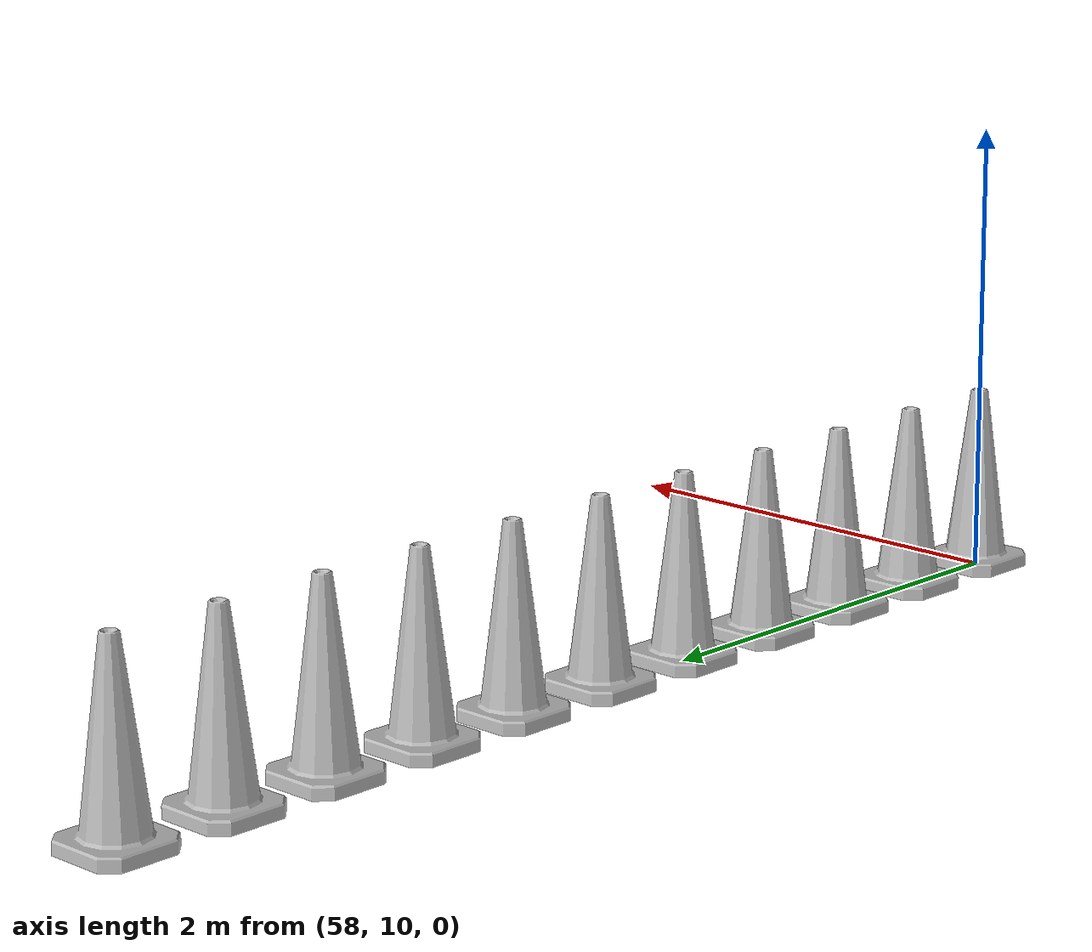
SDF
<sdf version="1.4">
 <world name="default">
  <include><uri>model://sun</uri></include>
  <model name="Construction Cone 03">
   <link name="link">
    <collision name="collision">
     <geometry>
      <mesh><scale>7.5 7.5 7.5</scale><uri>model://construction_cone/meshes/construction_cone.dae</uri></mesh>
     </geometry>
    </collision>
    <visual name="visual">
     <geometry>
      <mesh><scale>7.5 7.5 7.5</scale><uri>model://construction_cone/meshes/construction_cone.dae</uri></mesh>
     </geometry>
    </visual>
    <velocity_decay><linear>0</linear><angular>0</angular></velocity_decay>
    <inertial>
     <inertia><ixx>1</ixx><ixy>0</ixy><ixz>0</ixz><iyy>1</iyy><iyz>0</iyz><izz>1</izz></inertia>
     <mass>1</mass>
    </inertial>
   </link>
   <pose>58 10 0 0 -0 0</pose>
   <static>0</static>
  </model>
  <model name="Construction Cone 04">
   <link name="link">
    <collision name="collision">
     <geometry>
      <mesh><scale>7.5 7.5 7.5</scale><uri>model://construction_cone/meshes/construction_cone.dae</uri></mesh>
     </geometry>
    </collision>
    <visual name="visual">
     <geometry>
      <mesh><scale>7.5 7.5 7.5</scale><uri>model://construction_cone/meshes/construction_cone.dae</uri></mesh>
     </geometry>
    </visual>
    <velocity_decay><linear>0</linear><angular>0</angular></velocity_decay>
    <inertial>
     <inertia><ixx>1</ixx><ixy>0</ixy><ixz>0</ixz><iyy>1</iyy><iyz>0</iyz><izz>1</izz></inertia>
     <mass>1</mass>
    </inertial>
   </link>
   <pose>58 10.5 0 0 -0 0</pose>
   <static>0</static>
  </model>
  <model name="Construction Cone 05">
   <link name="link">
    <collision name="collision">
     <geometry>
      <mesh><scale>7.5 7.5 7.5</scale><uri>model://construction_cone/meshes/construction_cone.dae</uri></mesh>
     </geometry>
    </collision>
    <visual name="visual">
     <geometry>
      <mesh><scale>7.5 7.5 7.5</scale><uri>model://construction_cone/meshes/construction_cone.dae</uri></mesh>
     </geometry>
    </visual>
    <velocity_decay><linear>0</linear><angular>0</angular></velocity_decay>
    <inertial>
     <inertia><ixx>1</ixx><ixy>0</ixy><ixz>0</ixz><iyy>1</iyy><iyz>0</iyz><izz>1</izz></inertia>
     <mass>1</mass>
    </inertial>
   </link>
   <pose>58 11 0 0 -0 0</pose>
   <static>0</static>
  </model>
  <model name="Construction Cone 06">
   <link name="link">
    <collision name="collision">
     <geometry>
      <mesh><scale>7.5 7.5 7.5</scale><uri>model://construction_cone/meshes/construction_cone.dae</uri></mesh>
     </geometry>
    </collision>
    <visual name="visual">
     <geometry>
      <mesh><scale>7.5 7.5 7.5</scale><uri>model://construction_cone/meshes/construction_cone.dae</uri></mesh>
     </geometry>
    </visual>
    <velocity_decay><linear>0</linear><angular>0</angular></velocity_decay>
    <inertial>
     <inertia><ixx>1</ixx><ixy>0</ixy><ixz>0</ixz><iyy>1</iyy><iyz>0</iyz><izz>1</izz></inertia>
     <mass>1</mass>
    </inertial>
   </link>
   <pose>58 11.5 0 0 -0 0</pose>
   <static>0</static>
  </model>
  <model name="Construction Cone 07">
   <link name="link">
    <collision name="collision">
     <geometry>
      <mesh><scale>7.5 7.5 7.5</scale><uri>model://construction_cone/meshes/construction_cone.dae</uri></mesh>
     </geometry>
    </collision>
    <visual name="visual">
     <geometry>
      <mesh><scale>7.5 7.5 7.5</scale><uri>model://construction_cone/meshes/construction_cone.dae</uri></mesh>
     </geometry>
    </visual>
    <velocity_decay><linear>0</linear><angular>0</angular></velocity_decay>
    <inertial>
     <inertia><ixx>1</ixx><ixy>0</ixy><ixz>0</ixz><iyy>1</iyy><iyz>0</iyz><izz>1</izz></inertia>
     <mass>1</mass>
    </inertial>
   </link>
   <pose>58 12 0 0 -0 0</pose>
   <static>0</static>
  </model>
  <model name="Construction Cone 08">
   <link name="link">
    <collision name="collision">
     <geometry>
      <mesh><scale>7.5 7.5 7.5</scale><uri>model://construction_cone/meshes/construction_cone.dae</uri></mesh>
     </geometry>
    </collision>
    <visual name="visual">
     <geometry>
      <mesh><scale>7.5 7.5 7.5</scale><uri>model://construction_cone/meshes/construction_cone.dae</uri></mesh>
     </geometry>
    </visual>
    <velocity_decay><linear>0</linear><angular>0</angular></velocity_decay>
    <inertial>
     <inertia><ixx>1</ixx><ixy>0</ixy><ixz>0</ixz><iyy>1</iyy><iyz>0</iyz><izz>1</izz></inertia>
     <mass>1</mass>
    </inertial>
   </link>
   <pose>58 12.5 0 0 -0 0</pose>
   <static>0</static>
  </model>
  <model name="Construction Cone 09">
   <link name="link">
    <collision name="collision">
     <geometry>
      <mesh><scale>7.5 7.5 7.5</scale><uri>model://construction_cone/meshes/construction_cone.dae</uri></mesh>
     </geometry>
    </collision>
    <visual name="visual">
     <geometry>
      <mesh><scale>7.5 7.5 7.5</scale><uri>model://construction_cone/meshes/construction_cone.dae</uri></mesh>
     </geometry>
    </visual>
    <velocity_decay><linear>0</linear><angular>0</angular></velocity_decay>
    <inertial>
     <inertia><ixx>1</ixx><ixy>0</ixy><ixz>0</ixz><iyy>1</iyy><iyz>0</iyz><izz>1</izz></inertia>
     <mass>1</mass>
    </inertial>
   </link>
   <pose>58 13 0 0 -0 0</pose>
   <static>0</static>
  </model>
  <model name="Construction Cone 10">
   <link name="link">
    <collision name="collision">
     <geometry>
      <mesh><scale>7.5 7.5 7.5</scale><uri>model://construction_cone/meshes/construction_cone.dae</uri></mesh>
     </geometry>
    </collision>
    <visual name="visual">
     <geometry>
      <mesh><scale>7.5 7.5 7.5</scale><uri>model://construction_cone/meshes/construction_cone.dae</uri></mesh>
     </geometry>
    </visual>
    <velocity_decay><linear>0</linear><angular>0</angular></velocity_decay>
    <inertial>
     <inertia><ixx>1</ixx><ixy>0</ixy><ixz>0</ixz><iyy>1</iyy><iyz>0</iyz><izz>1</izz></inertia>
     <mass>1</mass>
    </inertial>
   </link>
   <pose>58 13.5 0 0 -0 0</pose>
   <static>0</static>
  </model>
  <model name="Construction Cone 11">
   <link name="link">
    <collision name="collision">
     <geometry>
      <mesh><scale>7.5 7.5 7.5</scale><uri>model://construction_cone/meshes/construction_cone.dae</uri></mesh>
     </geometry>
    </collision>
    <visual name="visual">
     <geometry>
      <mesh><scale>7.5 7.5 7.5</scale><uri>model://construction_cone/meshes/construction_cone.dae</uri></mesh>
     </geometry>
    </visual>
    <velocity_decay><linear>0</linear><angular>0</angular></velocity_decay>
    <inertial>
     <inertia><ixx>1</ixx><ixy>0</ixy><ixz>0</ixz><iyy>1</iyy><iyz>0</iyz><izz>1</izz></inertia>
     <mass>1</mass>
    </inertial>
   </link>
   <pose>58 14 0 0 -0 0</pose>
   <static>0</static>
  </model>
  <model name="Construction Cone 12">
   <link name="link">
    <collision name="collision">
     <geometry>
      <mesh><scale>7.5 7.5 7.5</scale><uri>model://construction_cone/meshes/construction_cone.dae</uri></mesh>
     </geometry>
    </collision>
    <visual name="visual">
     <geometry>
      <mesh><scale>7.5 7.5 7.5</scale><uri>model://construction_cone/meshes/construction_cone.dae</uri></mesh>
     </geometry>
    </visual>
    <velocity_decay><linear>0</linear><angular>0</angular></velocity_decay>
    <inertial>
     <inertia><ixx>1</ixx><ixy>0</ixy><ixz>0</ixz><iyy>1</iyy><iyz>0</iyz><izz>1</izz></inertia>
     <mass>1</mass>
    </inertial>
   </link>
   <pose>58 14.5 0 0 -0 0</pose>
   <static>0</static>
  </model>
  <model name="Construction Cone 13">
   <link name="link">
    <collision name="collision">
     <geometry>
      <mesh><scale>7.5 7.5 7.5</scale><uri>model://construction_cone/meshes/construction_cone.dae</uri></mesh>
     </geometry>
    </collision>
    <visual name="visual">
     <geometry>
      <mesh><scale>7.5 7.5 7.5</scale><uri>model://construction_cone/meshes/construction_cone.dae</uri></mesh>
     </geometry>
    </visual>
    <velocity_decay><linear>0</linear><angular>0</angular></velocity_decay>
    <inertial>
     <inertia><ixx>1</ixx><ixy>0</ixy><ixz>0</ixz><iyy>1</iyy><iyz>0</iyz><izz>1</izz></inertia>
     <mass>1</mass>
    </inertial>
   </link>
   <pose>58 15 0 0 -0 0</pose>
   <static>0</static>
  </model>
 </world>
</sdf>
